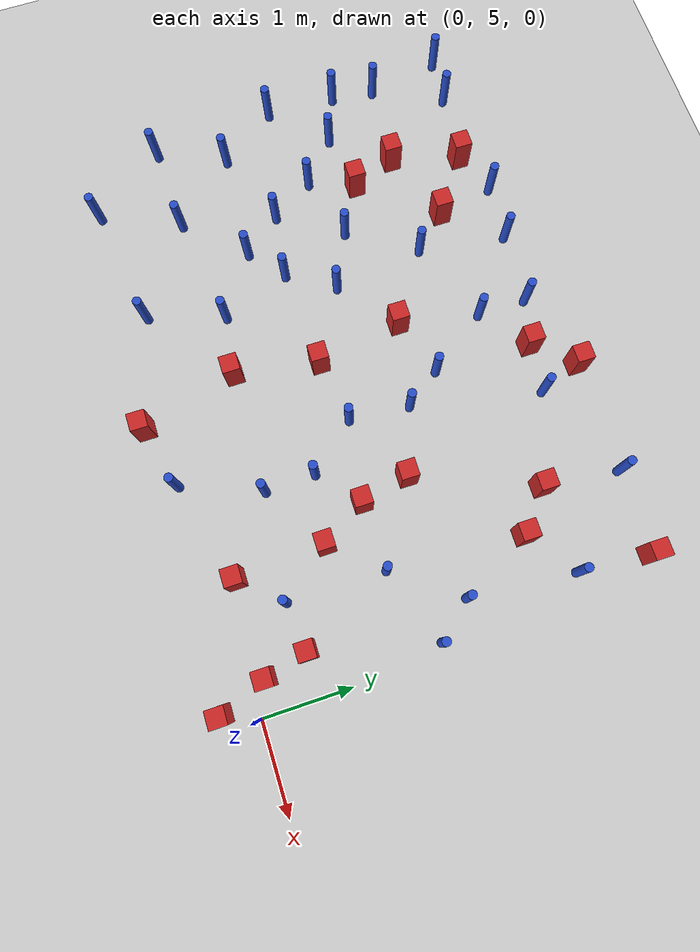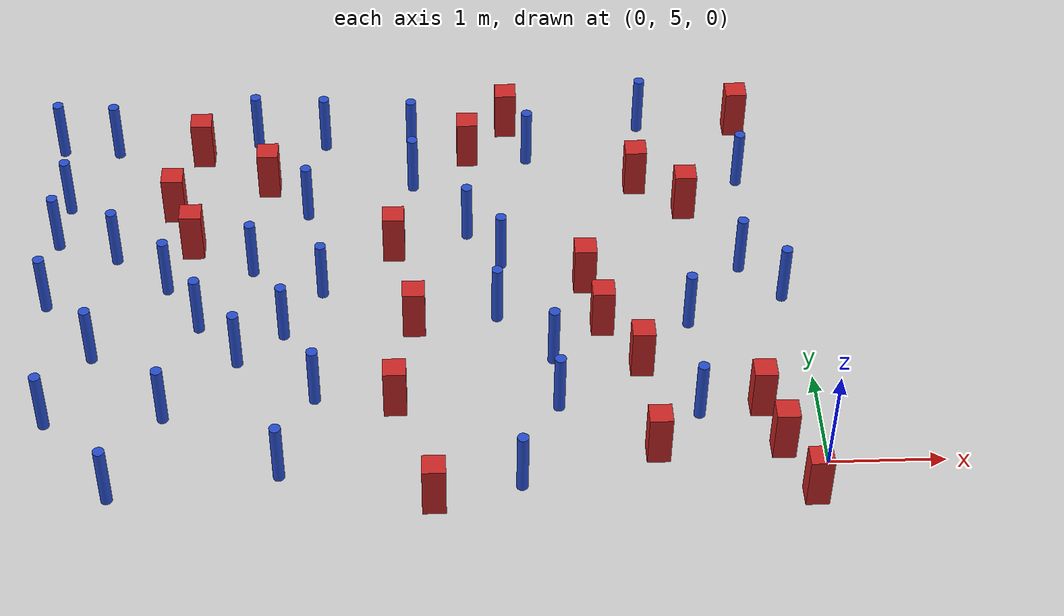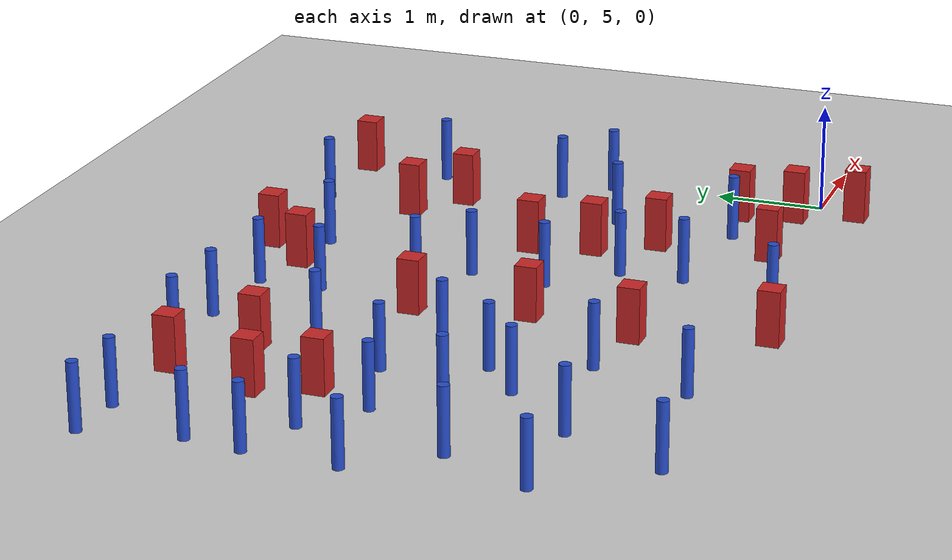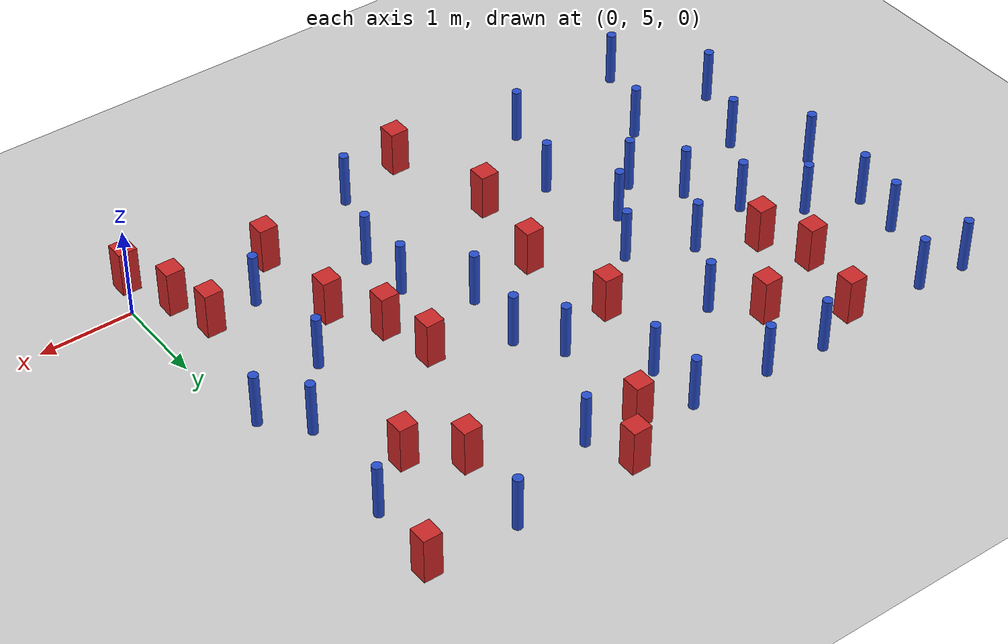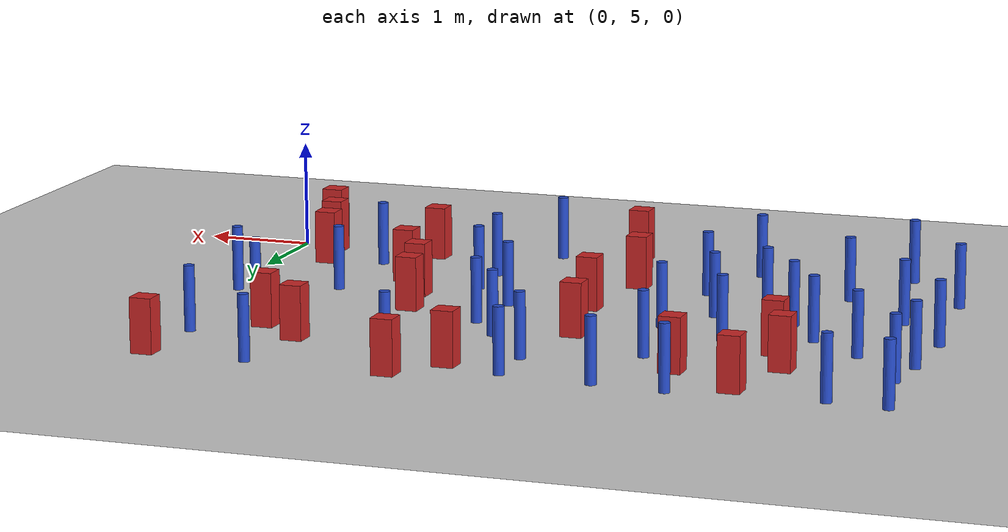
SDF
<sdf version="1.6">
 <world name="default">
  <model name="ground_plane">
   <static>1</static>
   <link name="link">
    <collision name="collision">
     <geometry><plane><normal>0 0 1</normal><size>100 100</size></plane></geometry>
     <surface><friction><ode><mu>100</mu><mu2>50</mu2></ode></friction></surface>
    </collision>
    <visual name="visual">
     <cast_shadows>0</cast_shadows>
     <geometry><plane><normal>0 0 1</normal><size>100 100</size></plane></geometry>
     <material>
      <ambient>1.0 1.0 1.0 1.0</ambient>
      <diffuse>0.8 0.8 0.8 1.0</diffuse>
      <specular>0.01 0.01 0.01 1.000000</specular>
     </material>
    </visual>
   </link>
  </model>
  <model name="pole_obstacle3">
   <static>true</static>
   <pose>-3.49241924509 8.64289006772 -9.4761961606e-06 5.49618799729e-07 2.36310414e-07 -1.55090534824e-07</pose>
   <link name="link">
    <pose>0 0 0.3 0 -0 0</pose>
    <inertial>
     <mass>1</mass>
     <inertia><ixx>0.145833</ixx><ixy>0</ixy><ixz>0</ixz><iyy>0.145833</iyy><iyz>0</iyz><izz>0.125</izz></inertia>
    </inertial>
    <collision name="collision">
     <geometry><cylinder><radius>0.05</radius><length>.6</length></cylinder></geometry>
    </collision>
    <visual name="visual">
     <geometry><cylinder><radius>0.05</radius><length>.6</length></cylinder></geometry>
     <material>
      <script><name>Gazebo/Blue</name><uri>file://media/materials/scripts/gazebo.material</uri></script>
     </material>
    </visual>
   </link>
  </model>
  <model name="square_post_obstacle2">
   <static>true</static>
   <pose>-0.159925843453 4.62938258808 -6.11067671241e-07 -5.50515727128e-06 -8.79689657224e-07 2.37013304536e-05</pose>
   <link name="link">
    <pose>0 0 0.25 0 -0 0</pose>
    <inertial>
     <mass>100</mass>
     <inertia>
      <ixx>0.166667</ixx>
      <ixy>0</ixy>
      <ixz>0</ixz>
      <iyy>0.166667</iyy>
      <iyz>0</iyz>
      <izz>0.166667</izz>
     </inertia>
    </inertial>
    <collision name="collision"><geometry><box><size>.2 .2 .5</size></box></geometry></collision>
    <visual name="visual">
     <geometry><box><size>.2 .2 .5</size></box></geometry>
     <material>
      <script><name>Gazebo/Red</name><uri>file://media/materials/scripts/gazebo.material</uri></script>
     </material>
    </visual>
   </link>
  </model>
  <model name="pole_obstacle9">
   <static>true</static>
   <pose>-4.48564536037 8.25483826058 -9.47619616065e-06 5.49618799737e-07 2.36310414065e-07 -1.55090534796e-07</pose>
   <link name="link">
    <pose>0 0 0.3 0 -0 0</pose>
    <inertial>
     <mass>1</mass>
     <inertia><ixx>0.145833</ixx><ixy>0</ixy><ixz>0</ixz><iyy>0.145833</iyy><iyz>0</iyz><izz>0.125</izz></inertia>
    </inertial>
    <collision name="collision">
     <geometry><cylinder><radius>0.05</radius><length>.6</length></cylinder></geometry>
    </collision>
    <visual name="visual">
     <geometry><cylinder><radius>0.05</radius><length>.6</length></cylinder></geometry>
     <material>
      <script><name>Gazebo/Blue</name><uri>file://media/materials/scripts/gazebo.material</uri></script>
     </material>
    </visual>
   </link>
  </model>
  <model name="square_post_obstacle12">
   <static>true</static>
   <pose>-1.37454241037 8.5990074568 -6.11067671241e-07 -5.50515727128e-06 -8.79689657224e-07 2.37013304536e-05</pose>
   <link name="link">
    <pose>0 0 0.25 0 -0 0</pose>
    <inertial>
     <mass>100</mass>
     <inertia>
      <ixx>0.166667</ixx>
      <ixy>0</ixy>
      <ixz>0</ixz>
      <iyy>0.166667</iyy>
      <iyz>0</iyz>
      <izz>0.166667</izz>
     </inertia>
    </inertial>
    <collision name="collision"><geometry><box><size>.2 .2 .5</size></box></geometry></collision>
    <visual name="visual">
     <geometry><box><size>.2 .2 .5</size></box></geometry>
     <material>
      <script><name>Gazebo/Red</name><uri>file://media/materials/scripts/gazebo.material</uri></script>
     </material>
    </visual>
   </link>
  </model>
  <model name="pole_obstacle16">
   <static>true</static>
   <pose>-0.384769306161 8.63770552386 -9.47619616065e-06 5.49618799737e-07 2.36310414031e-07 -1.55090534818e-07</pose>
   <link name="link">
    <pose>0 0 0.3 0 -0 0</pose>
    <inertial>
     <mass>1</mass>
     <inertia><ixx>0.145833</ixx><ixy>0</ixy><ixz>0</ixz><iyy>0.145833</iyy><iyz>0</iyz><izz>0.125</izz></inertia>
    </inertial>
    <collision name="collision">
     <geometry><cylinder><radius>0.05</radius><length>.6</length></cylinder></geometry>
    </collision>
    <visual name="visual">
     <geometry><cylinder><radius>0.05</radius><length>.6</length></cylinder></geometry>
     <material>
      <script><name>Gazebo/Blue</name><uri>file://media/materials/scripts/gazebo.material</uri></script>
     </material>
    </visual>
   </link>
  </model>
  <model name="pole_obstacle18">
   <static>true</static>
   <pose>-4.32444124397 7.1787579736 -9.47619616065e-06 5.49618799737e-07 2.36310414037e-07 -1.55090534814e-07</pose>
   <link name="link">
    <pose>0 0 0.3 0 -0 0</pose>
    <inertial>
     <mass>1</mass>
     <inertia><ixx>0.145833</ixx><ixy>0</ixy><ixz>0</ixz><iyy>0.145833</iyy><iyz>0</iyz><izz>0.125</izz></inertia>
    </inertial>
    <collision name="collision">
     <geometry><cylinder><radius>0.05</radius><length>.6</length></cylinder></geometry>
    </collision>
    <visual name="visual">
     <geometry><cylinder><radius>0.05</radius><length>.6</length></cylinder></geometry>
     <material>
      <script><name>Gazebo/Blue</name><uri>file://media/materials/scripts/gazebo.material</uri></script>
     </material>
    </visual>
   </link>
  </model>
  <model name="square_post_obstacle15">
   <static>true</static>
   <pose>-1.43602810194 5.13662795015 -6.11067671241e-07 -5.50515727128e-06 -8.79689657224e-07 2.37013304536e-05</pose>
   <link name="link">
    <pose>0 0 0.25 0 -0 0</pose>
    <inertial>
     <mass>100</mass>
     <inertia>
      <ixx>0.166667</ixx>
      <ixy>0</ixy>
      <ixz>0</ixz>
      <iyy>0.166667</iyy>
      <iyz>0</iyz>
      <izz>0.166667</izz>
     </inertia>
    </inertial>
    <collision name="collision"><geometry><box><size>.2 .2 .5</size></box></geometry></collision>
    <visual name="visual">
     <geometry><box><size>.2 .2 .5</size></box></geometry>
     <material>
      <script><name>Gazebo/Red</name><uri>file://media/materials/scripts/gazebo.material</uri></script>
     </material>
    </visual>
   </link>
  </model>
  <model name="pole_obstacle30">
   <static>true</static>
   <pose>-6.35178551755 6.39308613961 -9.47619616065e-06 5.49618799737e-07 2.36310414037e-07 -1.55090534814e-07</pose>
   <link name="link">
    <pose>0 0 0.3 0 -0 0</pose>
    <inertial>
     <mass>1</mass>
     <inertia><ixx>0.145833</ixx><ixy>0</ixy><ixz>0</ixz><iyy>0.145833</iyy><iyz>0</iyz><izz>0.125</izz></inertia>
    </inertial>
    <collision name="collision">
     <geometry><cylinder><radius>0.05</radius><length>.6</length></cylinder></geometry>
    </collision>
    <visual name="visual">
     <geometry><cylinder><radius>0.05</radius><length>.6</length></cylinder></geometry>
     <material>
      <script><name>Gazebo/Blue</name><uri>file://media/materials/scripts/gazebo.material</uri></script>
     </material>
    </visual>
   </link>
  </model>
  <model name="square_post_obstacle22">
   <static>true</static>
   <pose>-5.73948550576 8.30927392379 -6.11067671241e-07 -5.50515727128e-06 -8.79689657224e-07 2.37013304536e-05</pose>
   <link name="link">
    <pose>0 0 0.25 0 -0 0</pose>
    <inertial>
     <mass>100</mass>
     <inertia>
      <ixx>0.166667</ixx>
      <ixy>0</ixy>
      <ixz>0</ixz>
      <iyy>0.166667</iyy>
      <iyz>0</iyz>
      <izz>0.166667</izz>
     </inertia>
    </inertial>
    <collision name="collision"><geometry><box><size>.2 .2 .5</size></box></geometry></collision>
    <visual name="visual">
     <geometry><box><size>.2 .2 .5</size></box></geometry>
     <material>
      <script><name>Gazebo/Red</name><uri>file://media/materials/scripts/gazebo.material</uri></script>
     </material>
    </visual>
   </link>
  </model>
  <model name="pole_obstacle31">
   <static>true</static>
   <pose>-6.68653512986 5.60528674512 -9.47619616065e-06 5.49618799737e-07 2.36310414037e-07 -1.55090534814e-07</pose>
   <link name="link">
    <pose>0 0 0.3 0 -0 0</pose>
    <inertial>
     <mass>1</mass>
     <inertia><ixx>0.145833</ixx><ixy>0</ixy><ixz>0</ixz><iyy>0.145833</iyy><iyz>0</iyz><izz>0.125</izz></inertia>
    </inertial>
    <collision name="collision">
     <geometry><cylinder><radius>0.05</radius><length>.6</length></cylinder></geometry>
    </collision>
    <visual name="visual">
     <geometry><cylinder><radius>0.05</radius><length>.6</length></cylinder></geometry>
     <material>
      <script><name>Gazebo/Blue</name><uri>file://media/materials/scripts/gazebo.material</uri></script>
     </material>
    </visual>
   </link>
  </model>
  <model name="square_post_obstacle28">
   <static>true</static>
   <pose>-4.8633790994 8.6462585116 -6.11067671241e-07 -5.50515727128e-06 -8.79689657224e-07 2.37013304536e-05</pose>
   <link name="link">
    <pose>0 0 0.25 0 -0 0</pose>
    <inertial>
     <mass>100</mass>
     <inertia>
      <ixx>0.166667</ixx>
      <ixy>0</ixy>
      <ixz>0</ixz>
      <iyy>0.166667</iyy>
      <iyz>0</iyz>
      <izz>0.166667</izz>
     </inertia>
    </inertial>
    <collision name="collision"><geometry><box><size>.2 .2 .5</size></box></geometry></collision>
    <visual name="visual">
     <geometry><box><size>.2 .2 .5</size></box></geometry>
     <material>
      <script><name>Gazebo/Red</name><uri>file://media/materials/scripts/gazebo.material</uri></script>
     </material>
    </visual>
   </link>
  </model>
  <model name="square_post_obstacle29">
   <static>true</static>
   <pose>-3.33987273103 4.61689935057 -6.11067671241e-07 -5.50515727128e-06 -8.79689657224e-07 2.37013304536e-05</pose>
   <link name="link">
    <pose>0 0 0.25 0 -0 0</pose>
    <inertial>
     <mass>100</mass>
     <inertia>
      <ixx>0.166667</ixx>
      <ixy>0</ixy>
      <ixz>0</ixz>
      <iyy>0.166667</iyy>
      <iyz>0</iyz>
      <izz>0.166667</izz>
     </inertia>
    </inertial>
    <collision name="collision"><geometry><box><size>.2 .2 .5</size></box></geometry></collision>
    <visual name="visual">
     <geometry><box><size>.2 .2 .5</size></box></geometry>
     <material>
      <script><name>Gazebo/Red</name><uri>file://media/materials/scripts/gazebo.material</uri></script>
     </material>
    </visual>
   </link>
  </model>
  <model name="pole_obstacle37">
   <static>true</static>
   <pose>-6.06324459123 4.74115250576 -9.47619616065e-06 5.49618799737e-07 2.36310414037e-07 -1.55090534814e-07</pose>
   <link name="link">
    <pose>0 0 0.3 0 -0 0</pose>
    <inertial>
     <mass>1</mass>
     <inertia><ixx>0.145833</ixx><ixy>0</ixy><ixz>0</ixz><iyy>0.145833</iyy><iyz>0</iyz><izz>0.125</izz></inertia>
    </inertial>
    <collision name="collision">
     <geometry><cylinder><radius>0.05</radius><length>.6</length></cylinder></geometry>
    </collision>
    <visual name="visual">
     <geometry><cylinder><radius>0.05</radius><length>.6</length></cylinder></geometry>
     <material>
      <script><name>Gazebo/Blue</name><uri>file://media/materials/scripts/gazebo.material</uri></script>
     </material>
    </visual>
   </link>
  </model>
  <model name="pole_obstacle41">
   <static>true</static>
   <pose>-4.36265108373 5.84053382149 -9.47619616065e-06 5.49618799737e-07 2.36310414037e-07 -1.55090534814e-07</pose>
   <link name="link">
    <pose>0 0 0.3 0 -0 0</pose>
    <inertial>
     <mass>1</mass>
     <inertia><ixx>0.145833</ixx><ixy>0</ixy><ixz>0</ixz><iyy>0.145833</iyy><iyz>0</iyz><izz>0.125</izz></inertia>
    </inertial>
    <collision name="collision">
     <geometry><cylinder><radius>0.05</radius><length>.6</length></cylinder></geometry>
    </collision>
    <visual name="visual">
     <geometry><cylinder><radius>0.05</radius><length>.6</length></cylinder></geometry>
     <material>
      <script><name>Gazebo/Blue</name><uri>file://media/materials/scripts/gazebo.material</uri></script>
     </material>
    </visual>
   </link>
  </model>
  <model name="pole_obstacle45">
   <static>true</static>
   <pose>-5.66810388388 5.64920619118 -9.47619616065e-06 5.49618799737e-07 2.36310414037e-07 -1.55090534814e-07</pose>
   <link name="link">
    <pose>0 0 0.3 0 -0 0</pose>
    <inertial>
     <mass>1</mass>
     <inertia><ixx>0.145833</ixx><ixy>0</ixy><ixz>0</ixz><iyy>0.145833</iyy><iyz>0</iyz><izz>0.125</izz></inertia>
    </inertial>
    <collision name="collision">
     <geometry><cylinder><radius>0.05</radius><length>.6</length></cylinder></geometry>
    </collision>
    <visual name="visual">
     <geometry><cylinder><radius>0.05</radius><length>.6</length></cylinder></geometry>
     <material>
      <script><name>Gazebo/Blue</name><uri>file://media/materials/scripts/gazebo.material</uri></script>
     </material>
    </visual>
   </link>
  </model>
  <model name="pole_obstacle47">
   <static>true</static>
   <pose>-2.26570509977 6.27647776069 -9.47619616065e-06 5.49618799738e-07 2.3631041406e-07 -1.55090534801e-07</pose>
   <link name="link">
    <pose>0 0 0.3 0 -0 0</pose>
    <inertial>
     <mass>1</mass>
     <inertia><ixx>0.145833</ixx><ixy>0</ixy><ixz>0</ixz><iyy>0.145833</iyy><iyz>0</iyz><izz>0.125</izz></inertia>
    </inertial>
    <collision name="collision">
     <geometry><cylinder><radius>0.05</radius><length>.6</length></cylinder></geometry>
    </collision>
    <visual name="visual">
     <geometry><cylinder><radius>0.05</radius><length>.6</length></cylinder></geometry>
     <material>
      <script><name>Gazebo/Blue</name><uri>file://media/materials/scripts/gazebo.material</uri></script>
     </material>
    </visual>
   </link>
  </model>
  <model name="square_post_obstacle37">
   <static>true</static>
   <pose>-3.67275437342 7.70824904039 -6.11067671241e-07 -5.50515727128e-06 -8.79689657224e-07 2.37013304536e-05</pose>
   <link name="link">
    <pose>0 0 0.25 0 -0 0</pose>
    <inertial>
     <mass>100</mass>
     <inertia>
      <ixx>0.166667</ixx>
      <ixy>0</ixy>
      <ixz>0</ixz>
      <iyy>0.166667</iyy>
      <iyz>0</iyz>
      <izz>0.166667</izz>
     </inertia>
    </inertial>
    <collision name="collision"><geometry><box><size>.2 .2 .5</size></box></geometry></collision>
    <visual name="visual">
     <geometry><box><size>.2 .2 .5</size></box></geometry>
     <material>
      <script><name>Gazebo/Red</name><uri>file://media/materials/scripts/gazebo.material</uri></script>
     </material>
    </visual>
   </link>
  </model>
  <model name="square_post_obstacle38">
   <static>true</static>
   <pose>-1.49577871113 6.15605712513 -6.11067671241e-07 -5.50515727128e-06 -8.79689657224e-07 2.37013304536e-05</pose>
   <link name="link">
    <pose>0 0 0.25 0 -0 0</pose>
    <inertial>
     <mass>100</mass>
     <inertia>
      <ixx>0.166667</ixx>
      <ixy>0</ixy>
      <ixz>0</ixz>
      <iyy>0.166667</iyy>
      <iyz>0</iyz>
      <izz>0.166667</izz>
     </inertia>
    </inertial>
    <collision name="collision"><geometry><box><size>.2 .2 .5</size></box></geometry></collision>
    <visual name="visual">
     <geometry><box><size>.2 .2 .5</size></box></geometry>
     <material>
      <script><name>Gazebo/Red</name><uri>file://media/materials/scripts/gazebo.material</uri></script>
     </material>
    </visual>
   </link>
  </model>
  <model name="pole_obstacle60">
   <static>true</static>
   <pose>-2.99211613226 7.94006481822 -9.47619616065e-06 5.49618799738e-07 2.3631041406e-07 -1.55090534801e-07</pose>
   <link name="link">
    <pose>0 0 0.3 0 -0 0</pose>
    <inertial>
     <mass>1</mass>
     <inertia><ixx>0.145833</ixx><ixy>0</ixy><ixz>0</ixz><iyy>0.145833</iyy><iyz>0</iyz><izz>0.125</izz></inertia>
    </inertial>
    <collision name="collision">
     <geometry><cylinder><radius>0.05</radius><length>.6</length></cylinder></geometry>
    </collision>
    <visual name="visual">
     <geometry><cylinder><radius>0.05</radius><length>.6</length></cylinder></geometry>
     <material>
      <script><name>Gazebo/Blue</name><uri>file://media/materials/scripts/gazebo.material</uri></script>
     </material>
    </visual>
   </link>
  </model>
  <model name="square_post_obstacle46">
   <static>true</static>
   <pose>-1.93492597464 7.2289280308 -6.11067671241e-07 -5.50515727128e-06 -8.79689657224e-07 2.37013304536e-05</pose>
   <link name="link">
    <pose>0 0 0.25 0 -0 0</pose>
    <inertial>
     <mass>100</mass>
     <inertia>
      <ixx>0.166667</ixx>
      <ixy>0</ixy>
      <ixz>0</ixz>
      <iyy>0.166667</iyy>
      <iyz>0</iyz>
      <izz>0.166667</izz>
     </inertia>
    </inertial>
    <collision name="collision"><geometry><box><size>.2 .2 .5</size></box></geometry></collision>
    <visual name="visual">
     <geometry><box><size>.2 .2 .5</size></box></geometry>
     <material>
      <script><name>Gazebo/Red</name><uri>file://media/materials/scripts/gazebo.material</uri></script>
     </material>
    </visual>
   </link>
  </model>
  <model name="pole_obstacle66">
   <static>true</static>
   <pose>-6.74243493338 8.40288885861 -9.47619616065e-06 5.49618799737e-07 2.36310414065e-07 -1.55090534796e-07</pose>
   <link name="link">
    <pose>0 0 0.3 0 -0 0</pose>
    <inertial>
     <mass>1</mass>
     <inertia><ixx>0.145833</ixx><ixy>0</ixy><ixz>0</ixz><iyy>0.145833</iyy><iyz>0</iyz><izz>0.125</izz></inertia>
    </inertial>
    <collision name="collision">
     <geometry><cylinder><radius>0.05</radius><length>.6</length></cylinder></geometry>
    </collision>
    <visual name="visual">
     <geometry><cylinder><radius>0.05</radius><length>.6</length></cylinder></geometry>
     <material>
      <script><name>Gazebo/Blue</name><uri>file://media/materials/scripts/gazebo.material</uri></script>
     </material>
    </visual>
   </link>
  </model>
  <model name="pole_obstacle80">
   <static>true</static>
   <pose>-4.97109804358 7.48078485225 -9.47619616065e-06 5.49618799737e-07 2.36310414037e-07 -1.55090534814e-07</pose>
   <link name="link">
    <pose>0 0 0.3 0 -0 0</pose>
    <inertial>
     <mass>1</mass>
     <inertia><ixx>0.145833</ixx><ixy>0</ixy><ixz>0</ixz><iyy>0.145833</iyy><iyz>0</iyz><izz>0.125</izz></inertia>
    </inertial>
    <collision name="collision">
     <geometry><cylinder><radius>0.05</radius><length>.6</length></cylinder></geometry>
    </collision>
    <visual name="visual">
     <geometry><cylinder><radius>0.05</radius><length>.6</length></cylinder></geometry>
     <material>
      <script><name>Gazebo/Blue</name><uri>file://media/materials/scripts/gazebo.material</uri></script>
     </material>
    </visual>
   </link>
  </model>
  <model name="square_post_obstacle70">
   <static>true</static>
   <pose>-3.49271793426 6.70509403598 -6.11067671241e-07 -5.50515727128e-06 -8.79689657224e-07 2.37013304536e-05</pose>
   <link name="link">
    <pose>0 0 0.25 0 -0 0</pose>
    <inertial>
     <mass>100</mass>
     <inertia>
      <ixx>0.166667</ixx>
      <ixy>0</ixy>
      <ixz>0</ixz>
      <iyy>0.166667</iyy>
      <iyz>0</iyz>
      <izz>0.166667</izz>
     </inertia>
    </inertial>
    <collision name="collision"><geometry><box><size>.2 .2 .5</size></box></geometry></collision>
    <visual name="visual">
     <geometry><box><size>.2 .2 .5</size></box></geometry>
     <material>
      <script><name>Gazebo/Red</name><uri>file://media/materials/scripts/gazebo.material</uri></script>
     </material>
    </visual>
   </link>
  </model>
  <model name="pole_obstacle99">
   <static>true</static>
   <pose>-6.24052304418 7.6776177294 -9.47619616065e-06 5.49618799737e-07 2.36310414037e-07 -1.55090534814e-07</pose>
   <link name="link">
    <pose>0 0 0.3 0 -0 0</pose>
    <inertial>
     <mass>1</mass>
     <inertia><ixx>0.145833</ixx><ixy>0</ixy><ixz>0</ixz><iyy>0.145833</iyy><iyz>0</iyz><izz>0.125</izz></inertia>
    </inertial>
    <collision name="collision">
     <geometry><cylinder><radius>0.05</radius><length>.6</length></cylinder></geometry>
    </collision>
    <visual name="visual">
     <geometry><cylinder><radius>0.05</radius><length>.6</length></cylinder></geometry>
     <material>
      <script><name>Gazebo/Blue</name><uri>file://media/materials/scripts/gazebo.material</uri></script>
     </material>
    </visual>
   </link>
  </model>
  <model name="pole_obstacle103">
   <static>true</static>
   <pose>-2.39323254655 9.01528275589 -9.4761961606e-06 5.49618799729e-07 2.36310414e-07 -1.55090534824e-07</pose>
   <link name="link">
    <pose>0 0 0.3 0 -0 0</pose>
    <inertial>
     <mass>1</mass>
     <inertia><ixx>0.145833</ixx><ixy>0</ixy><ixz>0</ixz><iyy>0.145833</iyy><iyz>0</iyz><izz>0.125</izz></inertia>
    </inertial>
    <collision name="collision">
     <geometry><cylinder><radius>0.05</radius><length>.6</length></cylinder></geometry>
    </collision>
    <visual name="visual">
     <geometry><cylinder><radius>0.05</radius><length>.6</length></cylinder></geometry>
     <material>
      <script><name>Gazebo/Blue</name><uri>file://media/materials/scripts/gazebo.material</uri></script>
     </material>
    </visual>
   </link>
  </model>
  <model name="pole_obstacle107">
   <static>true</static>
   <pose>-5.06103280486 6.30528247593 -9.47619616065e-06 5.49618799737e-07 2.36310414037e-07 -1.55090534814e-07</pose>
   <link name="link">
    <pose>0 0 0.3 0 -0 0</pose>
    <inertial>
     <mass>1</mass>
     <inertia><ixx>0.145833</ixx><ixy>0</ixy><ixz>0</ixz><iyy>0.145833</iyy><iyz>0</iyz><izz>0.125</izz></inertia>
    </inertial>
    <collision name="collision">
     <geometry><cylinder><radius>0.05</radius><length>.6</length></cylinder></geometry>
    </collision>
    <visual name="visual">
     <geometry><cylinder><radius>0.05</radius><length>.6</length></cylinder></geometry>
     <material>
      <script><name>Gazebo/Blue</name><uri>file://media/materials/scripts/gazebo.material</uri></script>
     </material>
    </visual>
   </link>
  </model>
  <model name="pole_obstacle110">
   <static>true</static>
   <pose>-2.74536135421 6.82321983896 -9.47619616065e-06 5.49618799738e-07 2.3631041406e-07 -1.55090534801e-07</pose>
   <link name="link">
    <pose>0 0 0.3 0 -0 0</pose>
    <inertial>
     <mass>1</mass>
     <inertia><ixx>0.145833</ixx><ixy>0</ixy><ixz>0</ixz><iyy>0.145833</iyy><iyz>0</iyz><izz>0.125</izz></inertia>
    </inertial>
    <collision name="collision">
     <geometry><cylinder><radius>0.05</radius><length>.6</length></cylinder></geometry>
    </collision>
    <visual name="visual">
     <geometry><cylinder><radius>0.05</radius><length>.6</length></cylinder></geometry>
     <material>
      <script><name>Gazebo/Blue</name><uri>file://media/materials/scripts/gazebo.material</uri></script>
     </material>
    </visual>
   </link>
  </model>
  <model name="pole_obstacle112">
   <static>true</static>
   <pose>-1.03703096074 5.58111882677 -9.47619616065e-06 5.49618799737e-07 2.36310414062e-07 -1.55090534799e-07</pose>
   <link name="link">
    <pose>0 0 0.3 0 -0 0</pose>
    <inertial>
     <mass>1</mass>
     <inertia><ixx>0.145833</ixx><ixy>0</ixy><ixz>0</ixz><iyy>0.145833</iyy><iyz>0</iyz><izz>0.125</izz></inertia>
    </inertial>
    <collision name="collision">
     <geometry><cylinder><radius>0.05</radius><length>.6</length></cylinder></geometry>
    </collision>
    <visual name="visual">
     <geometry><cylinder><radius>0.05</radius><length>.6</length></cylinder></geometry>
     <material>
      <script><name>Gazebo/Blue</name><uri>file://media/materials/scripts/gazebo.material</uri></script>
     </material>
    </visual>
   </link>
  </model>
  <model name="square_post_obstacle113">
   <static>true</static>
   <pose>-5.51803186121 9.11346915938 -6.11067671241e-07 -5.50515727128e-06 -8.79689657224e-07 2.37013304536e-05</pose>
   <link name="link">
    <pose>0 0 0.25 0 -0 0</pose>
    <inertial>
     <mass>100</mass>
     <inertia>
      <ixx>0.166667</ixx>
      <ixy>0</ixy>
      <ixz>0</ixz>
      <iyy>0.166667</iyy>
      <iyz>0</iyz>
      <izz>0.166667</izz>
     </inertia>
    </inertial>
    <collision name="collision"><geometry><box><size>.2 .2 .5</size></box></geometry></collision>
    <visual name="visual">
     <geometry><box><size>.2 .2 .5</size></box></geometry>
     <material>
      <script><name>Gazebo/Red</name><uri>file://media/materials/scripts/gazebo.material</uri></script>
     </material>
    </visual>
   </link>
  </model>
  <model name="square_post_obstacle117">
   <static>true</static>
   <pose>-0.331041204205 9.45259485164 -6.11067671241e-07 -5.50515727128e-06 -8.79689657224e-07 2.37013304536e-05</pose>
   <link name="link">
    <pose>0 0 0.25 0 -0 0</pose>
    <inertial>
     <mass>100</mass>
     <inertia>
      <ixx>0.166667</ixx>
      <ixy>0</ixy>
      <ixz>0</ixz>
      <iyy>0.166667</iyy>
      <iyz>0</iyz>
      <izz>0.166667</izz>
     </inertia>
    </inertial>
    <collision name="collision"><geometry><box><size>.2 .2 .5</size></box></geometry></collision>
    <visual name="visual">
     <geometry><box><size>.2 .2 .5</size></box></geometry>
     <material>
      <script><name>Gazebo/Red</name><uri>file://media/materials/scripts/gazebo.material</uri></script>
     </material>
    </visual>
   </link>
  </model>
  <model name="square_post_obstacle119">
   <static>true</static>
   <pose>-2.96489102704 9.05702091416 -6.11067671241e-07 -5.50515727128e-06 -8.79689657224e-07 2.37013304536e-05</pose>
   <link name="link">
    <pose>0 0 0.25 0 -0 0</pose>
    <inertial>
     <mass>100</mass>
     <inertia>
      <ixx>0.166667</ixx>
      <ixy>0</ixy>
      <ixz>0</ixz>
      <iyy>0.166667</iyy>
      <iyz>0</iyz>
      <izz>0.166667</izz>
     </inertia>
    </inertial>
    <collision name="collision"><geometry><box><size>.2 .2 .5</size></box></geometry></collision>
    <visual name="visual">
     <geometry><box><size>.2 .2 .5</size></box></geometry>
     <material>
      <script><name>Gazebo/Red</name><uri>file://media/materials/scripts/gazebo.material</uri></script>
     </material>
    </visual>
   </link>
  </model>
  <model name="pole_obstacle124">
   <static>true</static>
   <pose>-1.02804234303 6.69456878022 -9.47619616065e-06 5.49618799737e-07 2.36310414062e-07 -1.55090534799e-07</pose>
   <link name="link">
    <pose>0 0 0.3 0 -0 0</pose>
    <inertial>
     <mass>1</mass>
     <inertia><ixx>0.145833</ixx><ixy>0</ixy><ixz>0</ixz><iyy>0.145833</iyy><iyz>0</iyz><izz>0.125</izz></inertia>
    </inertial>
    <collision name="collision">
     <geometry><cylinder><radius>0.05</radius><length>.6</length></cylinder></geometry>
    </collision>
    <visual name="visual">
     <geometry><cylinder><radius>0.05</radius><length>.6</length></cylinder></geometry>
     <material>
      <script><name>Gazebo/Blue</name><uri>file://media/materials/scripts/gazebo.material</uri></script>
     </material>
    </visual>
   </link>
  </model>
  <model name="square_post_obstacle123">
   <static>true</static>
   <pose>-3.66209708548 5.73511206504 -6.11067671241e-07 -5.50515727128e-06 -8.79689657224e-07 2.37013304536e-05</pose>
   <link name="link">
    <pose>0 0 0.25 0 -0 0</pose>
    <inertial>
     <mass>100</mass>
     <inertia>
      <ixx>0.166667</ixx>
      <ixy>0</ixy>
      <ixz>0</ixz>
      <iyy>0.166667</iyy>
      <iyz>0</iyz>
      <izz>0.166667</izz>
     </inertia>
    </inertial>
    <collision name="collision"><geometry><box><size>.2 .2 .5</size></box></geometry></collision>
    <visual name="visual">
     <geometry><box><size>.2 .2 .5</size></box></geometry>
     <material>
      <script><name>Gazebo/Red</name><uri>file://media/materials/scripts/gazebo.material</uri></script>
     </material>
    </visual>
   </link>
  </model>
  <model name="pole_obstacle130">
   <static>true</static>
   <pose>-5.74183621645 7.26032491004 -9.47619616065e-06 5.49618799737e-07 2.36310414037e-07 -1.55090534814e-07</pose>
   <link name="link">
    <pose>0 0 0.3 0 -0 0</pose>
    <inertial>
     <mass>1</mass>
     <inertia><ixx>0.145833</ixx><ixy>0</ixy><ixz>0</ixz><iyy>0.145833</iyy><iyz>0</iyz><izz>0.125</izz></inertia>
    </inertial>
    <collision name="collision">
     <geometry><cylinder><radius>0.05</radius><length>.6</length></cylinder></geometry>
    </collision>
    <visual name="visual">
     <geometry><cylinder><radius>0.05</radius><length>.6</length></cylinder></geometry>
     <material>
      <script><name>Gazebo/Blue</name><uri>file://media/materials/scripts/gazebo.material</uri></script>
     </material>
    </visual>
   </link>
  </model>
  <model name="pole_obstacle136">
   <static>true</static>
   <pose>-4.64032962146 4.95951956471 -9.47619616065e-06 5.49618799737e-07 2.36310414037e-07 -1.55090534814e-07</pose>
   <link name="link">
    <pose>0 0 0.3 0 -0 0</pose>
    <inertial>
     <mass>1</mass>
     <inertia><ixx>0.145833</ixx><ixy>0</ixy><ixz>0</ixz><iyy>0.145833</iyy><iyz>0</iyz><izz>0.125</izz></inertia>
    </inertial>
    <collision name="collision">
     <geometry><cylinder><radius>0.05</radius><length>.6</length></cylinder></geometry>
    </collision>
    <visual name="visual">
     <geometry><cylinder><radius>0.05</radius><length>.6</length></cylinder></geometry>
     <material>
      <script><name>Gazebo/Blue</name><uri>file://media/materials/scripts/gazebo.material</uri></script>
     </material>
    </visual>
   </link>
  </model>
  <model name="pole_obstacle147">
   <static>true</static>
   <pose>-0.143988153896 7.01616943663 -9.47619616065e-06 5.49618799737e-07 2.36310414062e-07 -1.550905348e-07</pose>
   <link name="link">
    <pose>0 0 0.3 0 -0 0</pose>
    <inertial>
     <mass>1</mass>
     <inertia><ixx>0.145833</ixx><ixy>0</ixy><ixz>0</ixz><iyy>0.145833</iyy><iyz>0</iyz><izz>0.125</izz></inertia>
    </inertial>
    <collision name="collision">
     <geometry><cylinder><radius>0.05</radius><length>.6</length></cylinder></geometry>
    </collision>
    <visual name="visual">
     <geometry><cylinder><radius>0.05</radius><length>.6</length></cylinder></geometry>
     <material>
      <script><name>Gazebo/Blue</name><uri>file://media/materials/scripts/gazebo.material</uri></script>
     </material>
    </visual>
   </link>
  </model>
  <model name="pole_obstacle152">
   <static>true</static>
   <pose>-2.68930565911 7.52379879324 -9.47619616065e-06 5.49618799738e-07 2.3631041406e-07 -1.55090534801e-07</pose>
   <link name="link">
    <pose>0 0 0.3 0 -0 0</pose>
    <inertial>
     <mass>1</mass>
     <inertia><ixx>0.145833</ixx><ixy>0</ixy><ixz>0</ixz><iyy>0.145833</iyy><iyz>0</iyz><izz>0.125</izz></inertia>
    </inertial>
    <collision name="collision">
     <geometry><cylinder><radius>0.05</radius><length>.6</length></cylinder></geometry>
    </collision>
    <visual name="visual">
     <geometry><cylinder><radius>0.05</radius><length>.6</length></cylinder></geometry>
     <material>
      <script><name>Gazebo/Blue</name><uri>file://media/materials/scripts/gazebo.material</uri></script>
     </material>
    </visual>
   </link>
  </model>
  <model name="pole_obstacle162">
   <static>true</static>
   <pose>-1.27702766451 9.48723087998 -9.47619616065e-06 5.49618799737e-07 2.36310414046e-07 -1.55090534809e-07</pose>
   <link name="link">
    <pose>0 0 0.3 0 -0 0</pose>
    <inertial>
     <mass>1</mass>
     <inertia><ixx>0.145833</ixx><ixy>0</ixy><ixz>0</ixz><iyy>0.145833</iyy><iyz>0</iyz><izz>0.125</izz></inertia>
    </inertial>
    <collision name="collision">
     <geometry><cylinder><radius>0.05</radius><length>.6</length></cylinder></geometry>
    </collision>
    <visual name="visual">
     <geometry><cylinder><radius>0.05</radius><length>.6</length></cylinder></geometry>
     <material>
      <script><name>Gazebo/Blue</name><uri>file://media/materials/scripts/gazebo.material</uri></script>
     </material>
    </visual>
   </link>
  </model>
  <model name="pole_obstacle163">
   <static>true</static>
   <pose>-6.80142686675 7.89336702262 -9.47619616065e-06 5.49618799737e-07 2.36310414037e-07 -1.55090534814e-07</pose>
   <link name="link">
    <pose>0 0 0.3 0 -0 0</pose>
    <inertial>
     <mass>1</mass>
     <inertia><ixx>0.145833</ixx><ixy>0</ixy><ixz>0</ixz><iyy>0.145833</iyy><iyz>0</iyz><izz>0.125</izz></inertia>
    </inertial>
    <collision name="collision">
     <geometry><cylinder><radius>0.05</radius><length>.6</length></cylinder></geometry>
    </collision>
    <visual name="visual">
     <geometry><cylinder><radius>0.05</radius><length>.6</length></cylinder></geometry>
     <material>
      <script><name>Gazebo/Blue</name><uri>file://media/materials/scripts/gazebo.material</uri></script>
     </material>
    </visual>
   </link>
  </model>
  <model name="pole_obstacle164">
   <static>true</static>
   <pose>-2.24521514358 5.69975526596 -9.47619616065e-06 5.49618799738e-07 2.3631041406e-07 -1.55090534801e-07</pose>
   <link name="link">
    <pose>0 0 0.3 0 -0 0</pose>
    <inertial>
     <mass>1</mass>
     <inertia><ixx>0.145833</ixx><ixy>0</ixy><ixz>0</ixz><iyy>0.145833</iyy><iyz>0</iyz><izz>0.125</izz></inertia>
    </inertial>
    <collision name="collision">
     <geometry><cylinder><radius>0.05</radius><length>.6</length></cylinder></geometry>
    </collision>
    <visual name="visual">
     <geometry><cylinder><radius>0.05</radius><length>.6</length></cylinder></geometry>
     <material>
      <script><name>Gazebo/Blue</name><uri>file://media/materials/scripts/gazebo.material</uri></script>
     </material>
    </visual>
   </link>
  </model>
  <model name="square_post_obstacle156">
   <static>true</static>
   <pose>-0.369825222336 5.15919098909 -6.11067671241e-07 -5.50515727128e-06 -8.79689657224e-07 2.37013304536e-05</pose>
   <link name="link">
    <pose>0 0 0.25 0 -0 0</pose>
    <inertial>
     <mass>100</mass>
     <inertia>
      <ixx>0.166667</ixx>
      <ixy>0</ixy>
      <ixz>0</ixz>
      <iyy>0.166667</iyy>
      <iyz>0</iyz>
      <izz>0.166667</izz>
     </inertia>
    </inertial>
    <collision name="collision"><geometry><box><size>.2 .2 .5</size></box></geometry></collision>
    <visual name="visual">
     <geometry><box><size>.2 .2 .5</size></box></geometry>
     <material>
      <script><name>Gazebo/Red</name><uri>file://media/materials/scripts/gazebo.material</uri></script>
     </material>
    </visual>
   </link>
  </model>
  <model name="square_post_obstacle158">
   <static>true</static>
   <pose>-2.58205059816 9.49419086702 -6.11067671241e-07 -5.50515727128e-06 -8.79689657224e-07 2.37013304536e-05</pose>
   <link name="link">
    <pose>0 0 0.25 0 -0 0</pose>
    <inertial>
     <mass>100</mass>
     <inertia>
      <ixx>0.166667</ixx>
      <ixy>0</ixy>
      <ixz>0</ixz>
      <iyy>0.166667</iyy>
      <iyz>0</iyz>
      <izz>0.166667</izz>
     </inertia>
    </inertial>
    <collision name="collision"><geometry><box><size>.2 .2 .5</size></box></geometry></collision>
    <visual name="visual">
     <geometry><box><size>.2 .2 .5</size></box></geometry>
     <material>
      <script><name>Gazebo/Red</name><uri>file://media/materials/scripts/gazebo.material</uri></script>
     </material>
    </visual>
   </link>
  </model>
  <model name="pole_obstacle165">
   <static>true</static>
   <pose>-6.8959137154 9.26013339555 -9.47619616065e-06 5.49618799737e-07 2.36310414065e-07 -1.55090534796e-07</pose>
   <link name="link">
    <pose>0 0 0.3 0 -0 0</pose>
    <inertial>
     <mass>1</mass>
     <inertia><ixx>0.145833</ixx><ixy>0</ixy><ixz>0</ixz><iyy>0.145833</iyy><iyz>0</iyz><izz>0.125</izz></inertia>
    </inertial>
    <collision name="collision">
     <geometry><cylinder><radius>0.05</radius><length>.6</length></cylinder></geometry>
    </collision>
    <visual name="visual">
     <geometry><cylinder><radius>0.05</radius><length>.6</length></cylinder></geometry>
     <material>
      <script><name>Gazebo/Blue</name><uri>file://media/materials/scripts/gazebo.material</uri></script>
     </material>
    </visual>
   </link>
  </model>
  <model name="square_post_obstacle159">
   <static>true</static>
   <pose>-0.936485551421 8.22648398067 -6.11067671241e-07 -5.50515727128e-06 -8.79689657224e-07 2.37013304536e-05</pose>
   <link name="link">
    <pose>0 0 0.25 0 -0 0</pose>
    <inertial>
     <mass>100</mass>
     <inertia>
      <ixx>0.166667</ixx>
      <ixy>0</ixy>
      <ixz>0</ixz>
      <iyy>0.166667</iyy>
      <iyz>0</iyz>
      <izz>0.166667</izz>
     </inertia>
    </inertial>
    <collision name="collision"><geometry><box><size>.2 .2 .5</size></box></geometry></collision>
    <visual name="visual">
     <geometry><box><size>.2 .2 .5</size></box></geometry>
     <material>
      <script><name>Gazebo/Red</name><uri>file://media/materials/scripts/gazebo.material</uri></script>
     </material>
    </visual>
   </link>
  </model>
  <model name="square_post_obstacle164">
   <static>true</static>
   <pose>-5.53572017024 7.78943395012 -6.11067671241e-07 -5.50515727128e-06 -8.79689657224e-07 2.37013304536e-05</pose>
   <link name="link">
    <pose>0 0 0.25 0 -0 0</pose>
    <inertial>
     <mass>100</mass>
     <inertia>
      <ixx>0.166667</ixx>
      <ixy>0</ixy>
      <ixz>0</ixz>
      <iyy>0.166667</iyy>
      <iyz>0</iyz>
      <izz>0.166667</izz>
     </inertia>
    </inertial>
    <collision name="collision"><geometry><box><size>.2 .2 .5</size></box></geometry></collision>
    <visual name="visual">
     <geometry><box><size>.2 .2 .5</size></box></geometry>
     <material>
      <script><name>Gazebo/Red</name><uri>file://media/materials/scripts/gazebo.material</uri></script>
     </material>
    </visual>
   </link>
  </model>
  <model name="square_post_obstacle168">
   <static>true</static>
   <pose>-0.498004149522 5.64719706328 -6.11067671241e-07 -5.50515727128e-06 -8.79689657224e-07 2.37013304536e-05</pose>
   <link name="link">
    <pose>0 0 0.25 0 -0 0</pose>
    <inertial>
     <mass>100</mass>
     <inertia>
      <ixx>0.166667</ixx>
      <ixy>0</ixy>
      <ixz>0</ixz>
      <iyy>0.166667</iyy>
      <iyz>0</iyz>
      <izz>0.166667</izz>
     </inertia>
    </inertial>
    <collision name="collision"><geometry><box><size>.2 .2 .5</size></box></geometry></collision>
    <visual name="visual">
     <geometry><box><size>.2 .2 .5</size></box></geometry>
     <material>
      <script><name>Gazebo/Red</name><uri>file://media/materials/scripts/gazebo.material</uri></script>
     </material>
    </visual>
   </link>
  </model>
  <model name="pole_obstacle175">
   <static>true</static>
   <pose>-4.34181096623 9.28073360402 -9.47619616065e-06 5.49618799737e-07 2.36310414065e-07 -1.55090534796e-07</pose>
   <link name="link">
    <pose>0 0 0.3 0 -0 0</pose>
    <inertial>
     <mass>1</mass>
     <inertia><ixx>0.145833</ixx><ixy>0</ixy><ixz>0</ixz><iyy>0.145833</iyy><iyz>0</iyz><izz>0.125</izz></inertia>
    </inertial>
    <collision name="collision">
     <geometry><cylinder><radius>0.05</radius><length>.6</length></cylinder></geometry>
    </collision>
    <visual name="visual">
     <geometry><cylinder><radius>0.05</radius><length>.6</length></cylinder></geometry>
     <material>
      <script><name>Gazebo/Blue</name><uri>file://media/materials/scripts/gazebo.material</uri></script>
     </material>
    </visual>
   </link>
  </model>
  <model name="pole_obstacle184">
   <static>true</static>
   <pose>-6.82730212233 7.06837571385 -9.47619616065e-06 5.49618799737e-07 2.36310414037e-07 -1.55090534814e-07</pose>
   <link name="link">
    <pose>0 0 0.3 0 -0 0</pose>
    <inertial>
     <mass>1</mass>
     <inertia><ixx>0.145833</ixx><ixy>0</ixy><ixz>0</ixz><iyy>0.145833</iyy><iyz>0</iyz><izz>0.125</izz></inertia>
    </inertial>
    <collision name="collision">
     <geometry><cylinder><radius>0.05</radius><length>.6</length></cylinder></geometry>
    </collision>
    <visual name="visual">
     <geometry><cylinder><radius>0.05</radius><length>.6</length></cylinder></geometry>
     <material>
      <script><name>Gazebo/Blue</name><uri>file://media/materials/scripts/gazebo.material</uri></script>
     </material>
    </visual>
   </link>
  </model>
  <model name="square_post_obstacle199">
   <static>true</static>
   <pose>-1.80944909744 6.67077234332 -6.11067671241e-07 -5.50515727128e-06 -8.79689657224e-07 2.37013304536e-05</pose>
   <link name="link">
    <pose>0 0 0.25 0 -0 0</pose>
    <inertial>
     <mass>100</mass>
     <inertia>
      <ixx>0.166667</ixx>
      <ixy>0</ixy>
      <ixz>0</ixz>
      <iyy>0.166667</iyy>
      <iyz>0</iyz>
      <izz>0.166667</izz>
     </inertia>
    </inertial>
    <collision name="collision"><geometry><box><size>.2 .2 .5</size></box></geometry></collision>
    <visual name="visual">
     <geometry><box><size>.2 .2 .5</size></box></geometry>
     <material>
      <script><name>Gazebo/Red</name><uri>file://media/materials/scripts/gazebo.material</uri></script>
     </material>
    </visual>
   </link>
  </model>
  <model name="pole_obstacle191">
   <static>true</static>
   <pose>-5.42666078061 6.7530620425 -9.47619616065e-06 5.49618799737e-07 2.36310414037e-07 -1.55090534814e-07</pose>
   <link name="link">
    <pose>0 0 0.3 0 -0 0</pose>
    <inertial>
     <mass>1</mass>
     <inertia><ixx>0.145833</ixx><ixy>0</ixy><ixz>0</ixz><iyy>0.145833</iyy><iyz>0</iyz><izz>0.125</izz></inertia>
    </inertial>
    <collision name="collision">
     <geometry><cylinder><radius>0.05</radius><length>.6</length></cylinder></geometry>
    </collision>
    <visual name="visual">
     <geometry><cylinder><radius>0.05</radius><length>.6</length></cylinder></geometry>
     <material>
      <script><name>Gazebo/Blue</name><uri>file://media/materials/scripts/gazebo.material</uri></script>
     </material>
    </visual>
   </link>
  </model>
  <model name="pole_obstacle199">
   <static>true</static>
   <pose>-6.35841770038 9.21639830728 -9.47619616065e-06 5.49618799737e-07 2.36310414065e-07 -1.55090534796e-07</pose>
   <link name="link">
    <pose>0 0 0.3 0 -0 0</pose>
    <inertial>
     <mass>1</mass>
     <inertia><ixx>0.145833</ixx><ixy>0</ixy><ixz>0</ixz><iyy>0.145833</iyy><iyz>0</iyz><izz>0.125</izz></inertia>
    </inertial>
    <collision name="collision">
     <geometry><cylinder><radius>0.05</radius><length>.6</length></cylinder></geometry>
    </collision>
    <visual name="visual">
     <geometry><cylinder><radius>0.05</radius><length>.6</length></cylinder></geometry>
     <material>
      <script><name>Gazebo/Blue</name><uri>file://media/materials/scripts/gazebo.material</uri></script>
     </material>
    </visual>
   </link>
  </model>
  <model name="pole_obstacle209">
   <static>true</static>
   <pose>-3.5019816241 9.21865808942 -9.4761961606e-06 5.49618799729e-07 2.36310414e-07 -1.55090534824e-07</pose>
   <link name="link">
    <pose>0 0 0.3 0 -0 0</pose>
    <inertial>
     <mass>1</mass>
     <inertia><ixx>0.145833</ixx><ixy>0</ixy><ixz>0</ixz><iyy>0.145833</iyy><iyz>0</iyz><izz>0.125</izz></inertia>
    </inertial>
    <collision name="collision">
     <geometry><cylinder><radius>0.05</radius><length>.6</length></cylinder></geometry>
    </collision>
    <visual name="visual">
     <geometry><cylinder><radius>0.05</radius><length>.6</length></cylinder></geometry>
     <material>
      <script><name>Gazebo/Blue</name><uri>file://media/materials/scripts/gazebo.material</uri></script>
     </material>
    </visual>
   </link>
  </model>
  <model name="pole_obstacle214">
   <static>true</static>
   <pose>-2.60097477124 4.80009780741 -9.47619616065e-06 5.49618799738e-07 2.3631041406e-07 -1.55090534801e-07</pose>
   <link name="link">
    <pose>0 0 0.3 0 -0 0</pose>
    <inertial>
     <mass>1</mass>
     <inertia><ixx>0.145833</ixx><ixy>0</ixy><ixz>0</ixz><iyy>0.145833</iyy><iyz>0</iyz><izz>0.125</izz></inertia>
    </inertial>
    <collision name="collision">
     <geometry><cylinder><radius>0.05</radius><length>.6</length></cylinder></geometry>
    </collision>
    <visual name="visual">
     <geometry><cylinder><radius>0.05</radius><length>.6</length></cylinder></geometry>
     <material>
      <script><name>Gazebo/Blue</name><uri>file://media/materials/scripts/gazebo.material</uri></script>
     </material>
    </visual>
   </link>
  </model>
  <model name="pole_obstacle221">
   <static>true</static>
   <pose>-5.00085999061 9.32837002078 -9.47619616065e-06 5.49618799737e-07 2.36310414065e-07 -1.55090534796e-07</pose>
   <link name="link">
    <pose>0 0 0.3 0 -0 0</pose>
    <inertial>
     <mass>1</mass>
     <inertia><ixx>0.145833</ixx><ixy>0</ixy><ixz>0</ixz><iyy>0.145833</iyy><iyz>0</iyz><izz>0.125</izz></inertia>
    </inertial>
    <collision name="collision">
     <geometry><cylinder><radius>0.05</radius><length>.6</length></cylinder></geometry>
    </collision>
    <visual name="visual">
     <geometry><cylinder><radius>0.05</radius><length>.6</length></cylinder></geometry>
     <material>
      <script><name>Gazebo/Blue</name><uri>file://media/materials/scripts/gazebo.material</uri></script>
     </material>
    </visual>
   </link>
  </model>
  <model name="pole_obstacle224">
   <static>true</static>
   <pose>-0.493368990611 7.41618002078 -9.47619616065e-06 5.49618799738e-07 2.3631041407e-07 -1.55090534794e-07</pose>
   <link name="link">
    <pose>0 0 0.3 0 -0 0</pose>
    <inertial>
     <mass>1</mass>
     <inertia><ixx>0.145833</ixx><ixy>0</ixy><ixz>0</ixz><iyy>0.145833</iyy><iyz>0</iyz><izz>0.125</izz></inertia>
    </inertial>
    <collision name="collision">
     <geometry><cylinder><radius>0.05</radius><length>.6</length></cylinder></geometry>
    </collision>
    <visual name="visual">
     <geometry><cylinder><radius>0.05</radius><length>.6</length></cylinder></geometry>
     <material>
      <script><name>Gazebo/Blue</name><uri>file://media/materials/scripts/gazebo.material</uri></script>
     </material>
    </visual>
   </link>
  </model>
  <model name="pole_obstacle230">
   <static>true</static>
   <pose>-4.65992999061 6.64334002078 -9.47619616065e-06 5.49618799737e-07 2.36310414037e-07 -1.55090534814e-07</pose>
   <link name="link">
    <pose>0 0 0.3 0 -0 0</pose>
    <inertial>
     <mass>1</mass>
     <inertia><ixx>0.145833</ixx><ixy>0</ixy><ixz>0</ixz><iyy>0.145833</iyy><iyz>0</iyz><izz>0.125</izz></inertia>
    </inertial>
    <collision name="collision">
     <geometry><cylinder><radius>0.05</radius><length>.6</length></cylinder></geometry>
    </collision>
    <visual name="visual">
     <geometry><cylinder><radius>0.05</radius><length>.6</length></cylinder></geometry>
     <material>
      <script><name>Gazebo/Blue</name><uri>file://media/materials/scripts/gazebo.material</uri></script>
     </material>
    </visual>
   </link>
  </model>
 </world>
</sdf>
